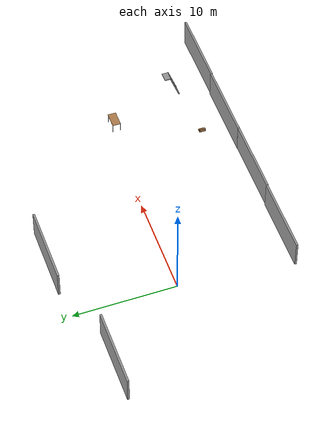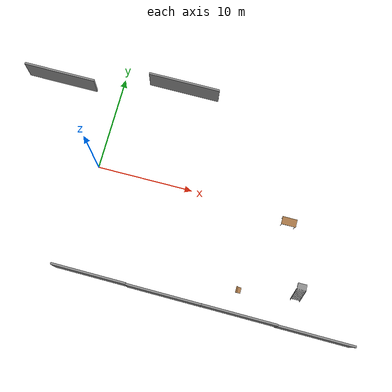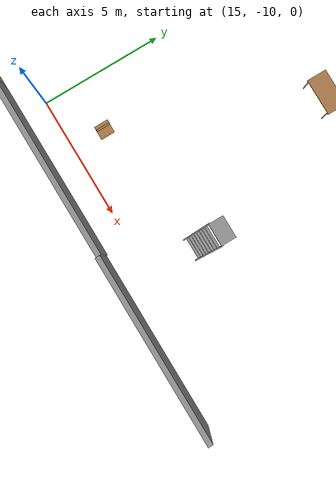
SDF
<sdf version="1.7">
 <world name="factory">
  <light name="sun" type="directional">
   <pose>0 0 10 0 -0 0</pose>
   <diffuse>0.8 0.8 0.8 1</diffuse>
   <specular>0.2 0.2 0.2 1</specular>
   <attenuation>
    <range>1000</range>
    <constant>0.9</constant>
    <linear>0.01</linear>
    <quadratic>0.001</quadratic>
   </attenuation>
   <direction>-0.5 0.1 -0.9</direction>
   <spot><inner_angle>0</inner_angle><outer_angle>0</outer_angle><falloff>0</falloff></spot>
  </light>
  <gravity>0 0 -9.8</gravity>
  <magnetic_field>6e-06 2.3e-05 -4.2e-05</magnetic_field>
  <atmosphere type="adiabatic"/>
  <physics name="default_physics" default="0" type="ode">
   <max_step_size>0.001</max_step_size>
   <real_time_factor>1</real_time_factor>
   <real_time_update_rate>1000</real_time_update_rate>
  </physics>
  <scene><ambient>0.4 0.4 0.4 1</ambient><background>0.7 0.7 0.7 1</background><shadows>1</shadows></scene>
  <spherical_coordinates>
   <surface_model>EARTH_WGS84</surface_model>
   <latitude_deg>0</latitude_deg>
   <longitude_deg>0</longitude_deg>
   <elevation>0</elevation>
   <heading_deg>0</heading_deg>
  </spherical_coordinates>
  <model name="grey_wall">
   <static>1</static>
   <link name="link">
    <pose>0 0 1.4 0 -0 0</pose>
    <collision name="collision"><geometry><box><size>7.5 0.2 2.8</size></box></geometry></collision>
    <visual name="visual">
     <cast_shadows>0</cast_shadows>
     <geometry><box><size>7.5 0.2 2.8</size></box></geometry>
     <material>
      <script>
       <uri>model://grey_wall/materials/scripts</uri>
       <uri>model://grey_wall/materials/textures</uri>
       <name>vrc/grey_wall</name>
      </script>
     </material>
    </visual>
   </link>
   <pose>-6.34942 8.1136 0 0 -0 0</pose>
  </model>
  <model name="wooden_case">
   <link name="base">
    <pose>0 0 0.024 0 -0 0</pose>
    <inertial>
     <pose>-0.022184 0 0.171592 0 -0 0</pose>
     <mass>3.96264</mass>
     <inertia>
      <ixx>0.213536</ixx>
      <ixy>0</ixy>
      <ixz>0.000779377</ixz>
      <iyy>0.0708943</iyy>
      <iyz>0</iyz>
      <izz>0.154604</izz>
     </inertia>
    </inertial>
    <collision name="collision_back">
     <pose>-0.053975 0 0.1778 0 -0 0</pose>
     <geometry><box><size>0.01905 0.5461 0.3175</size></box></geometry>
     <surface>
      <contact>
       <poissons_ratio>0.347</poissons_ratio>
       <elastic_modulus>8.8e+09</elastic_modulus>
       <ode><kp>100000</kp><kd>100</kd><max_vel>100</max_vel><min_depth>0.001</min_depth></ode>
      </contact>
      <friction>
       <torsional>
        <coefficient>1</coefficient>
        <use_patch_radius>0</use_patch_radius>
        <surface_radius>0.01</surface_radius>
       </torsional>
      </friction>
     </surface>
    </collision>
    <visual name="visual_back">
     <pose>-0.053975 0 0.1778 0 -0 0</pose>
     <geometry><box><size>0.01905 0.5461 0.3175</size></box></geometry>
     <material>
      <script><uri>file://media/materials/scripts/gazebo.material</uri><name>Gazebo/Wood</name></script>
     </material>
    </visual>
    <collision name="collision_bottom">
     <pose>0 0 0.009525 0 -0 0</pose>
     <geometry><box><size>0.127 0.5842 0.01905</size></box></geometry>
     <surface>
      <contact>
       <poissons_ratio>0.347</poissons_ratio>
       <elastic_modulus>8.8e+09</elastic_modulus>
       <ode><kp>100000</kp><kd>100</kd><max_vel>100</max_vel><min_depth>0.001</min_depth></ode>
      </contact>
      <friction>
       <torsional>
        <coefficient>1</coefficient>
        <use_patch_radius>0</use_patch_radius>
        <surface_radius>0.01</surface_radius>
       </torsional>
      </friction>
     </surface>
    </collision>
    <visual name="visual_bottom">
     <pose>0 0 0.009525 0 -0 0</pose>
     <geometry><box><size>0.127 0.5842 0.01905</size></box></geometry>
     <material>
      <script><uri>file://media/materials/scripts/gazebo.material</uri><name>Gazebo/Wood</name></script>
     </material>
    </visual>
    <collision name="collision_top">
     <pose>0 0 0.346075 0 -0 0</pose>
     <geometry><box><size>0.127 0.5842 0.01905</size></box></geometry>
     <surface>
      <contact>
       <poissons_ratio>0.347</poissons_ratio>
       <elastic_modulus>8.8e+09</elastic_modulus>
       <ode><kp>100000</kp><kd>100</kd><max_vel>100</max_vel><min_depth>0.001</min_depth></ode>
      </contact>
      <friction>
       <torsional>
        <coefficient>1</coefficient>
        <use_patch_radius>0</use_patch_radius>
        <surface_radius>0.01</surface_radius>
       </torsional>
      </friction>
     </surface>
    </collision>
    <visual name="visual_top">
     <pose>0 0 0.346075 0 -0 0</pose>
     <geometry><box><size>0.127 0.5842 0.01905</size></box></geometry>
     <material>
      <script><uri>file://media/materials/scripts/gazebo.material</uri><name>Gazebo/Wood</name></script>
     </material>
    </visual>
    <collision name="collision_left">
     <pose>0 -0.282575 0.1778 0 -0 0</pose>
     <geometry><box><size>0.127 0.01905 0.3175</size></box></geometry>
     <surface>
      <contact>
       <poissons_ratio>0.347</poissons_ratio>
       <elastic_modulus>8.8e+09</elastic_modulus>
       <ode><kp>100000</kp><kd>100</kd><max_vel>100</max_vel><min_depth>0.001</min_depth></ode>
      </contact>
      <friction>
       <torsional>
        <coefficient>1</coefficient>
        <use_patch_radius>0</use_patch_radius>
        <surface_radius>0.01</surface_radius>
       </torsional>
      </friction>
     </surface>
    </collision>
    <visual name="visual_left">
     <pose>0 -0.282575 0.1778 0 -0 0</pose>
     <geometry><box><size>0.127 0.01905 0.3175</size></box></geometry>
     <material>
      <script><uri>file://media/materials/scripts/gazebo.material</uri><name>Gazebo/Wood</name></script>
     </material>
    </visual>
    <collision name="collision_right">
     <pose>0 0.282575 0.1778 0 -0 0</pose>
     <geometry><box><size>0.127 0.01905 0.3175</size></box></geometry>
     <surface>
      <contact>
       <poissons_ratio>0.347</poissons_ratio>
       <elastic_modulus>8.8e+09</elastic_modulus>
       <ode><kp>100000</kp><kd>100</kd><max_vel>100</max_vel><min_depth>0.001</min_depth></ode>
      </contact>
      <friction>
       <torsional>
        <coefficient>1</coefficient>
        <use_patch_radius>0</use_patch_radius>
        <surface_radius>0.01</surface_radius>
       </torsional>
      </friction>
     </surface>
    </collision>
    <visual name="visual_right">
     <pose>0 0.282575 0.1778 0 -0 0</pose>
     <geometry><box><size>0.127 0.01905 0.3175</size></box></geometry>
     <material>
      <script><uri>file://media/materials/scripts/gazebo.material</uri><name>Gazebo/Wood</name></script>
     </material>
    </visual>
    <collision name="collision_block_left">
     <pose>0.0095 -0.2151 -0.012 0 -0 0</pose>
     <geometry><box><size>0.108 0.05 0.024</size></box></geometry>
     <surface>
      <contact>
       <poissons_ratio>0.347</poissons_ratio>
       <elastic_modulus>8.8e+09</elastic_modulus>
       <ode><kp>100000</kp><kd>100</kd><max_vel>100</max_vel><min_depth>0.001</min_depth></ode>
      </contact>
      <friction>
       <torsional>
        <coefficient>1</coefficient>
        <use_patch_radius>0</use_patch_radius>
        <surface_radius>0.01</surface_radius>
       </torsional>
      </friction>
     </surface>
    </collision>
    <visual name="visual_block_left">
     <pose>0.0095 -0.2151 -0.012 0 -0 0</pose>
     <geometry><box><size>0.108 0.05 0.024</size></box></geometry>
     <material>
      <script><uri>file://media/materials/scripts/gazebo.material</uri><name>Gazebo/Wood</name></script>
     </material>
    </visual>
    <collision name="collision_block_right">
     <pose>0.0095 0.2151 -0.012 0 -0 0</pose>
     <geometry><box><size>0.108 0.05 0.024</size></box></geometry>
     <surface>
      <contact>
       <poissons_ratio>0.347</poissons_ratio>
       <elastic_modulus>8.8e+09</elastic_modulus>
       <ode><kp>100000</kp><kd>100</kd><max_vel>100</max_vel><min_depth>0.001</min_depth></ode>
      </contact>
      <friction>
       <torsional>
        <coefficient>1</coefficient>
        <use_patch_radius>0</use_patch_radius>
        <surface_radius>0.01</surface_radius>
       </torsional>
      </friction>
     </surface>
    </collision>
    <visual name="visual_block_right">
     <pose>0.0095 0.2151 -0.012 0 -0 0</pose>
     <geometry><box><size>0.108 0.05 0.024</size></box></geometry>
     <material>
      <script><uri>file://media/materials/scripts/gazebo.material</uri><name>Gazebo/Wood</name></script>
     </material>
    </visual>
   </link>
   <link name="lid">
    <pose>0.243775 0 0.009525 0 -0 0</pose>
    <inertial>
     <mass>1.97874</mass>
     <inertia>
      <ixx>0.0563367</ixx>
      <ixy>0</ixy>
      <ixz>0</ixz>
      <iyy>0.020911</iyy>
      <iyz>0</iyz>
      <izz>0.0771281</izz>
     </inertia>
    </inertial>
    <collision name="collision">
     <geometry><box><size>0.3556 0.5842 0.01905</size></box></geometry>
     <surface>
      <contact>
       <poissons_ratio>0.347</poissons_ratio>
       <elastic_modulus>8.8e+09</elastic_modulus>
       <ode><kp>100000</kp><kd>100</kd><max_vel>100</max_vel><min_depth>0.001</min_depth></ode>
      </contact>
      <friction>
       <torsional>
        <coefficient>1</coefficient>
        <use_patch_radius>0</use_patch_radius>
        <surface_radius>0.01</surface_radius>
       </torsional>
      </friction>
     </surface>
    </collision>
    <visual name="visual">
     <geometry><box><size>0.3556 0.5842 0.01905</size></box></geometry>
     <material>
      <script><uri>file://media/materials/scripts/gazebo.material</uri><name>Gazebo/Wood</name></script>
     </material>
    </visual>
    <visual name="tee_nut_1">
     <pose>0.122 -0.216 0 0 -0 0</pose>
     <geometry><cylinder><radius>0.00635</radius><length>0.0192405</length></cylinder></geometry>
     <material>
      <script><uri>file://media/materials/scripts/gazebo.material</uri><name>Gazebo/Grey</name></script>
     </material>
    </visual>
    <visual name="tee_nut_2">
     <pose>0.122 -0.088 0 0 -0 0</pose>
     <geometry><cylinder><radius>0.00635</radius><length>0.0192405</length></cylinder></geometry>
     <material>
      <script><uri>file://media/materials/scripts/gazebo.material</uri><name>Gazebo/Grey</name></script>
     </material>
    </visual>
    <visual name="tee_nut_3">
     <pose>0.122 0.088 0 0 -0 0</pose>
     <geometry><cylinder><radius>0.00635</radius><length>0.0192405</length></cylinder></geometry>
     <material>
      <script><uri>file://media/materials/scripts/gazebo.material</uri><name>Gazebo/Grey</name></script>
     </material>
    </visual>
    <visual name="tee_nut_4">
     <pose>0.122 0.216 0 0 -0 0</pose>
     <geometry><cylinder><radius>0.00635</radius><length>0.0192405</length></cylinder></geometry>
     <material>
      <script><uri>file://media/materials/scripts/gazebo.material</uri><name>Gazebo/Grey</name></script>
     </material>
    </visual>
   </link>
   <joint name="lid_hinge" type="revolute">
    <pose>-0.1778 0 0.01905 0 -0 0</pose>
    <parent>base</parent>
    <child>lid</child>
    <axis>
     <xyz>0 1 0</xyz>
     <limit><upper>0.523599</upper><lower>-1.5708</lower></limit>
     <dynamics><spring_reference>0</spring_reference><spring_stiffness>0</spring_stiffness></dynamics>
    </axis>
   </joint>
   <pose>16.9028 -8.59913 -0.049862 -8e-06 -0.014251 0.000546</pose>
  </model>
  <model name="table">
   <static>1</static>
   <link name="link">
    <collision name="surface">
     <pose>0 0 1 0 -0 0</pose>
     <geometry><box><size>1.5 0.8 0.03</size></box></geometry>
     <surface><friction><ode><mu>0.6</mu><mu2>0.6</mu2></ode></friction></surface>
    </collision>
    <visual name="visual1">
     <pose>0 0 1 0 -0 0</pose>
     <geometry><box><size>1.5 0.8 0.03</size></box></geometry>
     <material>
      <script><uri>file://media/materials/scripts/gazebo.material</uri><name>Gazebo/Wood</name></script>
     </material>
    </visual>
    <collision name="front_left_leg">
     <pose>0.68 0.38 0.5 0 -0 0</pose>
     <geometry><cylinder><radius>0.02</radius><length>1</length></cylinder></geometry>
    </collision>
    <visual name="front_left_leg">
     <pose>0.68 0.38 0.5 0 -0 0</pose>
     <geometry><cylinder><radius>0.02</radius><length>1</length></cylinder></geometry>
     <material>
      <script><uri>file://media/materials/scripts/gazebo.material</uri><name>Gazebo/Grey</name></script>
     </material>
    </visual>
    <collision name="front_right_leg">
     <pose>0.68 -0.38 0.5 0 -0 0</pose>
     <geometry><cylinder><radius>0.02</radius><length>1</length></cylinder></geometry>
    </collision>
    <visual name="front_right_leg">
     <pose>0.68 -0.38 0.5 0 -0 0</pose>
     <geometry><cylinder><radius>0.02</radius><length>1</length></cylinder></geometry>
     <material>
      <script><uri>file://media/materials/scripts/gazebo.material</uri><name>Gazebo/Grey</name></script>
     </material>
    </visual>
    <collision name="back_right_leg">
     <pose>-0.68 -0.38 0.5 0 -0 0</pose>
     <geometry><cylinder><radius>0.02</radius><length>1</length></cylinder></geometry>
    </collision>
    <visual name="back_right_leg">
     <pose>-0.68 -0.38 0.5 0 -0 0</pose>
     <geometry><cylinder><radius>0.02</radius><length>1</length></cylinder></geometry>
     <material>
      <script><uri>file://media/materials/scripts/gazebo.material</uri><name>Gazebo/Grey</name></script>
     </material>
    </visual>
    <collision name="back_left_leg">
     <pose>-0.68 0.38 0.5 0 -0 0</pose>
     <geometry><cylinder><radius>0.02</radius><length>1</length></cylinder></geometry>
    </collision>
    <visual name="back_left_leg">
     <pose>-0.68 0.38 0.5 0 -0 0</pose>
     <geometry><cylinder><radius>0.02</radius><length>1</length></cylinder></geometry>
     <material>
      <script><uri>file://media/materials/scripts/gazebo.material</uri><name>Gazebo/Grey</name></script>
     </material>
    </visual>
   </link>
   <pose>20.347 -0.76992 0 0 -0 0</pose>
  </model>
  <model name="grey_wall_0">
   <static>1</static>
   <link name="link">
    <pose>0 0 1.4 0 -0 0</pose>
    <collision name="collision"><geometry><box><size>7.5 0.2 2.8</size></box></geometry></collision>
    <visual name="visual">
     <cast_shadows>0</cast_shadows>
     <geometry><box><size>7.5 0.2 2.8</size></box></geometry>
     <material>
      <script>
       <uri>model://grey_wall/materials/scripts</uri>
       <uri>model://grey_wall/materials/textures</uri>
       <name>vrc/grey_wall</name>
      </script>
     </material>
    </visual>
   </link>
   <pose>6.44728 10.3566 0 0 -0 0</pose>
  </model>
  <model name="ladder_70deg_0rails">
   <static>1</static>
   <link name="step0">
    <pose>0 0.097059 0.266667 0 -0 0</pose>
    <inertial>
     <mass>9.75482</mass>
     <inertia>
      <ixx>0.00957124</ixx>
      <iyy>0.65963</iyy>
      <izz>0.666842</izz>
      <ixy>0</ixy>
      <ixz>0</ixz>
      <iyz>0</iyz>
     </inertia>
    </inertial>
    <collision name="collision"><geometry><box><size>0.9 0.1016 0.0381</size></box></geometry></collision>
    <visual name="visual">
     <geometry><box><size>0.9 0.1016 0.0381</size></box></geometry>
     <material>
      <script><uri>file://media/materials/scripts/gazebo.material</uri><name>Gazebo/Grey</name></script>
     </material>
    </visual>
   </link>
   <link name="step1">
    <pose>0 0.194117 0.533333 0 -0 0</pose>
    <inertial>
     <mass>9.75482</mass>
     <inertia>
      <ixx>0.00957124</ixx>
      <iyy>0.65963</iyy>
      <izz>0.666842</izz>
      <ixy>0</ixy>
      <ixz>0</ixz>
      <iyz>0</iyz>
     </inertia>
    </inertial>
    <collision name="collision"><geometry><box><size>0.9 0.1016 0.0381</size></box></geometry></collision>
    <visual name="visual">
     <geometry><box><size>0.9 0.1016 0.0381</size></box></geometry>
     <material>
      <script><uri>file://media/materials/scripts/gazebo.material</uri><name>Gazebo/Grey</name></script>
     </material>
    </visual>
   </link>
   <link name="step2">
    <pose>0 0.291176 0.8 0 -0 0</pose>
    <inertial>
     <mass>9.75482</mass>
     <inertia>
      <ixx>0.00957124</ixx>
      <iyy>0.65963</iyy>
      <izz>0.666842</izz>
      <ixy>0</ixy>
      <ixz>0</ixz>
      <iyz>0</iyz>
     </inertia>
    </inertial>
    <collision name="collision"><geometry><box><size>0.9 0.1016 0.0381</size></box></geometry></collision>
    <visual name="visual">
     <geometry><box><size>0.9 0.1016 0.0381</size></box></geometry>
     <material>
      <script><uri>file://media/materials/scripts/gazebo.material</uri><name>Gazebo/Grey</name></script>
     </material>
    </visual>
   </link>
   <link name="step3">
    <pose>0 0.388235 1.06667 0 -0 0</pose>
    <inertial>
     <mass>9.75482</mass>
     <inertia>
      <ixx>0.00957124</ixx>
      <iyy>0.65963</iyy>
      <izz>0.666842</izz>
      <ixy>0</ixy>
      <ixz>0</ixz>
      <iyz>0</iyz>
     </inertia>
    </inertial>
    <collision name="collision"><geometry><box><size>0.9 0.1016 0.0381</size></box></geometry></collision>
    <visual name="visual">
     <geometry><box><size>0.9 0.1016 0.0381</size></box></geometry>
     <material>
      <script><uri>file://media/materials/scripts/gazebo.material</uri><name>Gazebo/Grey</name></script>
     </material>
    </visual>
   </link>
   <link name="step4">
    <pose>0 0.485294 1.33333 0 -0 0</pose>
    <inertial>
     <mass>9.75482</mass>
     <inertia>
      <ixx>0.00957124</ixx>
      <iyy>0.65963</iyy>
      <izz>0.666842</izz>
      <ixy>0</ixy>
      <ixz>0</ixz>
      <iyz>0</iyz>
     </inertia>
    </inertial>
    <collision name="collision"><geometry><box><size>0.9 0.1016 0.0381</size></box></geometry></collision>
    <visual name="visual">
     <geometry><box><size>0.9 0.1016 0.0381</size></box></geometry>
     <material>
      <script><uri>file://media/materials/scripts/gazebo.material</uri><name>Gazebo/Grey</name></script>
     </material>
    </visual>
   </link>
   <link name="step5">
    <pose>0 0.582352 1.6 0 -0 0</pose>
    <inertial>
     <mass>9.75482</mass>
     <inertia>
      <ixx>0.00957124</ixx>
      <iyy>0.65963</iyy>
      <izz>0.666842</izz>
      <ixy>0</ixy>
      <ixz>0</ixz>
      <iyz>0</iyz>
     </inertia>
    </inertial>
    <collision name="collision"><geometry><box><size>0.9 0.1016 0.0381</size></box></geometry></collision>
    <visual name="visual">
     <geometry><box><size>0.9 0.1016 0.0381</size></box></geometry>
     <material>
      <script><uri>file://media/materials/scripts/gazebo.material</uri><name>Gazebo/Grey</name></script>
     </material>
    </visual>
   </link>
   <link name="step6">
    <pose>0 0.679411 1.86667 0 -0 0</pose>
    <inertial>
     <mass>9.75482</mass>
     <inertia>
      <ixx>0.00957124</ixx>
      <iyy>0.65963</iyy>
      <izz>0.666842</izz>
      <ixy>0</ixy>
      <ixz>0</ixz>
      <iyz>0</iyz>
     </inertia>
    </inertial>
    <collision name="collision"><geometry><box><size>0.9 0.1016 0.0381</size></box></geometry></collision>
    <visual name="visual">
     <geometry><box><size>0.9 0.1016 0.0381</size></box></geometry>
     <material>
      <script><uri>file://media/materials/scripts/gazebo.material</uri><name>Gazebo/Grey</name></script>
     </material>
    </visual>
   </link>
   <link name="step7">
    <pose>0 0.77647 2.13333 0 -0 0</pose>
    <inertial>
     <mass>9.75482</mass>
     <inertia>
      <ixx>0.00957124</ixx>
      <iyy>0.65963</iyy>
      <izz>0.666842</izz>
      <ixy>0</ixy>
      <ixz>0</ixz>
      <iyz>0</iyz>
     </inertia>
    </inertial>
    <collision name="collision"><geometry><box><size>0.9 0.1016 0.0381</size></box></geometry></collision>
    <visual name="visual">
     <geometry><box><size>0.9 0.1016 0.0381</size></box></geometry>
     <material>
      <script><uri>file://media/materials/scripts/gazebo.material</uri><name>Gazebo/Grey</name></script>
     </material>
    </visual>
   </link>
   <link name="landing">
    <pose>0 1.17353 2.4 0 -0 0</pose>
    <inertial>
     <mass>57.6072</mass>
     <inertia><ixx>1.73518</ixx><iyy>3.89545</iyy><izz>5.6167</izz><ixy>0</ixy><ixz>0</ixz><iyz>0</iyz></inertia>
    </inertial>
    <collision name="collision"><geometry><box><size>0.9 0.6 0.1016</size></box></geometry></collision>
    <visual name="visual">
     <geometry><box><size>0.9 0.6 0.1016</size></box></geometry>
     <material>
      <script><uri>file://media/materials/scripts/gazebo.material</uri><name>Gazebo/Grey</name></script>
     </material>
    </visual>
   </link>
   <link name="left_side_wall">
    <pose>-0.45 0.436764 1.2 1.22173 -0 0</pose>
    <collision name="collision"><geometry><box><size>0.0508 2.63403 0.13</size></box></geometry></collision>
    <visual name="visual">
     <geometry><box><size>0.0508 2.63403 0.13</size></box></geometry>
     <material>
      <script><uri>file://media/materials/scripts/gazebo.material</uri><name>Gazebo/Grey</name></script>
     </material>
    </visual>
   </link>
   <link name="right_side_wall">
    <pose>0.45 0.436764 1.2 1.22173 -0 0</pose>
    <collision name="collision"><geometry><box><size>0.0508 2.63403 0.13</size></box></geometry></collision>
    <visual name="visual">
     <geometry><box><size>0.0508 2.63403 0.13</size></box></geometry>
     <material>
      <script><uri>file://media/materials/scripts/gazebo.material</uri><name>Gazebo/Grey</name></script>
     </material>
    </visual>
   </link>
   <pose>22.7475 -8.13571 0 0 -0 0</pose>
  </model>
  <model name="grey_wall_1">
   <static>1</static>
   <link name="link">
    <pose>0 0 1.4 0 -0 0</pose>
    <collision name="collision"><geometry><box><size>7.5 0.2 2.8</size></box></geometry></collision>
    <visual name="visual">
     <cast_shadows>0</cast_shadows>
     <geometry><box><size>7.5 0.2 2.8</size></box></geometry>
     <material>
      <script>
       <uri>model://grey_wall/materials/scripts</uri>
       <uri>model://grey_wall/materials/textures</uri>
       <name>vrc/grey_wall</name>
      </script>
     </material>
    </visual>
   </link>
   <pose>2.55943 -11.0434 0 0 -0 0</pose>
  </model>
  <model name="grey_wall_2">
   <static>1</static>
   <link name="link">
    <pose>0 0 1.4 0 -0 0</pose>
    <collision name="collision"><geometry><box><size>7.5 0.2 2.8</size></box></geometry></collision>
    <visual name="visual">
     <cast_shadows>0</cast_shadows>
     <geometry><box><size>7.5 0.2 2.8</size></box></geometry>
     <material>
      <script>
       <uri>model://grey_wall/materials/scripts</uri>
       <uri>model://grey_wall/materials/textures</uri>
       <name>vrc/grey_wall</name>
      </script>
     </material>
    </visual>
   </link>
   <pose>10.0826 -11.0964 0 0 -0 0</pose>
  </model>
  <model name="grey_wall_3">
   <static>1</static>
   <link name="link">
    <pose>0 0 1.4 0 -0 0</pose>
    <collision name="collision"><geometry><box><size>7.5 0.2 2.8</size></box></geometry></collision>
    <visual name="visual">
     <cast_shadows>0</cast_shadows>
     <geometry><box><size>7.5 0.2 2.8</size></box></geometry>
     <material>
      <script>
       <uri>model://grey_wall/materials/scripts</uri>
       <uri>model://grey_wall/materials/textures</uri>
       <name>vrc/grey_wall</name>
      </script>
     </material>
    </visual>
   </link>
   <pose>17.5262 -11.0892 0 0 -0 0</pose>
  </model>
  <model name="grey_wall_4">
   <static>1</static>
   <link name="link">
    <pose>0 0 1.4 0 -0 0</pose>
    <collision name="collision"><geometry><box><size>7.5 0.2 2.8</size></box></geometry></collision>
    <visual name="visual">
     <cast_shadows>0</cast_shadows>
     <geometry><box><size>7.5 0.2 2.8</size></box></geometry>
     <material>
      <script>
       <uri>model://grey_wall/materials/scripts</uri>
       <uri>model://grey_wall/materials/textures</uri>
       <name>vrc/grey_wall</name>
      </script>
     </material>
    </visual>
   </link>
   <pose>25.0328 -11.1375 0 0 -0 0</pose>
  </model>
 </world>
</sdf>
